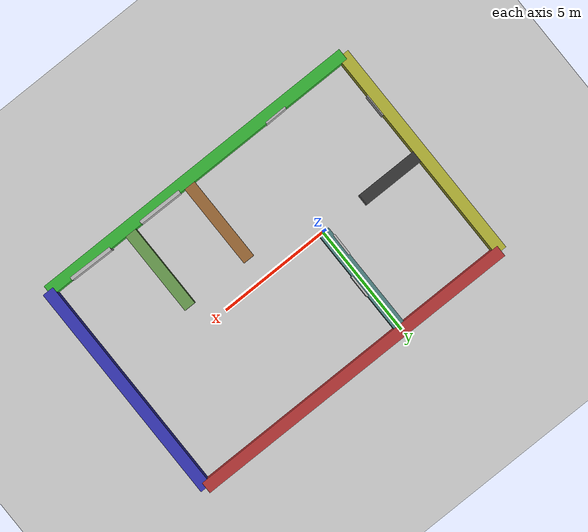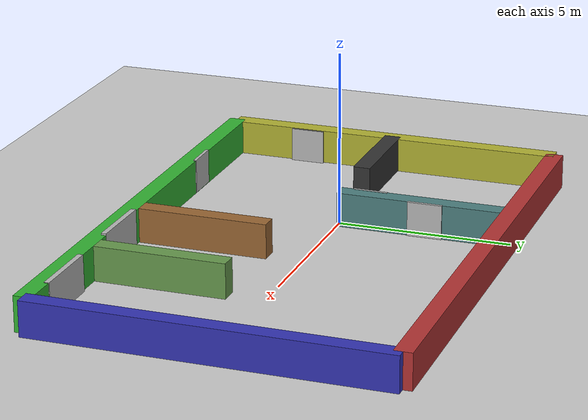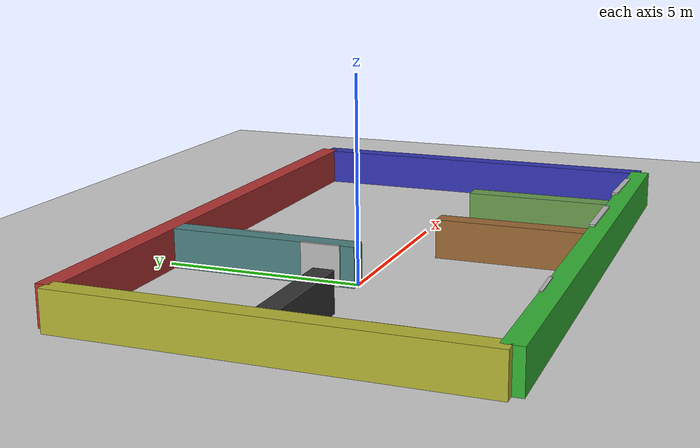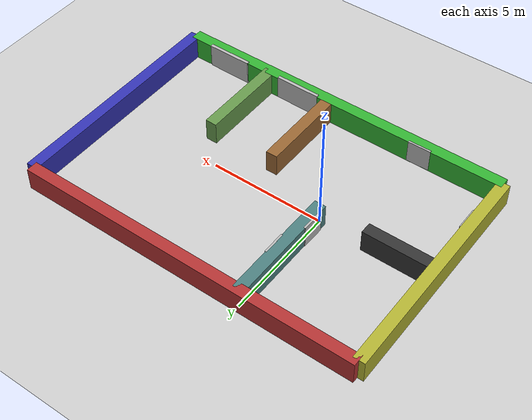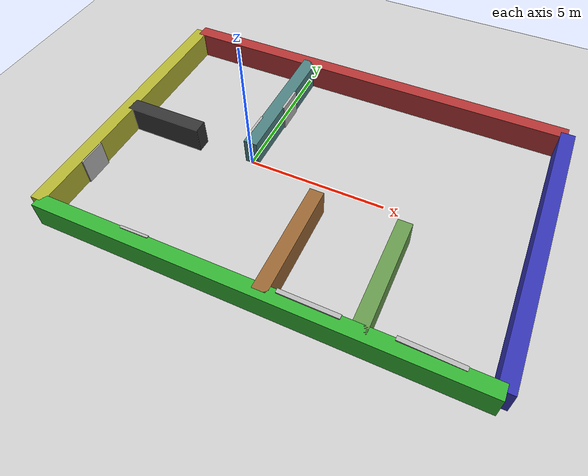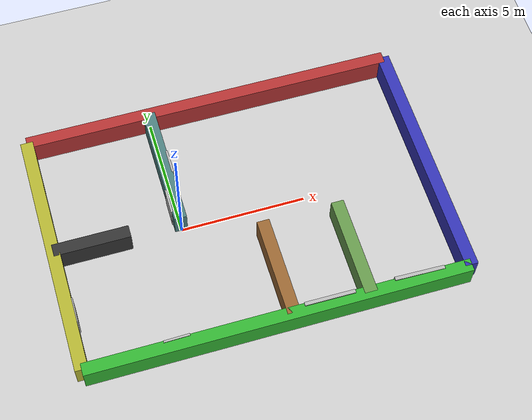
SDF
<?xml version="1.0" ?>
<sdf version='1.9'>
  <world name='cwmaze'>
    <scene>
      <grid>false</grid>
      <ambient>0.4 0.4 0.4 1</ambient>
      <background>0.7 0.7 0.7 1</background>
      <shadows>true</shadows>
    </scene>
    <physics name='10ms' type='ignored'>
      <max_step_size>0.01</max_step_size>
      <real_time_factor>1</real_time_factor>
      <dart>
        <collision_detector>bullet</collision_detector>
        <solver>
          <solver_type>dantzig</solver_type>
        </solver>
      </dart>
      <real_time_update_rate>1000</real_time_update_rate>
    </physics>
    <plugin name='ignition::gazebo::systems::Physics' filename='ignition-gazebo-physics-system'/>
    <plugin name='ignition::gazebo::systems::Sensors' filename='ignition-gazebo-sensors-system'>
      <render_engine>ogre2</render_engine>
    </plugin>
    <plugin name='ignition::gazebo::systems::SceneBroadcaster' filename='ignition-gazebo-scene-broadcaster-system'/>
    <plugin name='ignition::gazebo::systems::UserCommands' filename='ignition-gazebo-user-commands-system'/>
    <!-- imu plugin -->
    <plugin
      filename="libignition-gazebo-imu-system.so"
      name="ignition::gazebo::systems::Imu">
    </plugin>

    <gravity>0 0 -9.8</gravity>
    <magnetic_field>6e-06 2.3e-05 -4.2e-05</magnetic_field>
    <atmosphere type='adiabatic'/>
    <model name='ground_plane'>
      <static>true</static>
      <link name='link'>
        <collision name='collision'>
          <geometry>
            <plane>
              <normal>0 0 1</normal>
              <size>100 100</size>
            </plane>
          </geometry>
          <surface>
            <friction>
              <ode/>
            </friction>
            <bounce/>
            <contact/>
          </surface>
        </collision>
        <visual name='visual'>
          <geometry>
            <plane>
              <normal>0 0 1</normal>
              <size>100 100</size>
            </plane>
          </geometry>
          <material>
            <ambient>0.8 0.8 0.8 1</ambient>
            <diffuse>0.8 0.8 0.8 1</diffuse>
            <specular>0.8 0.8 0.8 1</specular>
          </material>
        </visual>
        <pose>0 0 0 0 -0 0</pose>
        <inertial>
          <pose>0 0 0 0 -0 0</pose>
          <mass>1</mass>
          <inertia>
            <ixx>1</ixx>
            <ixy>0</ixy>
            <ixz>0</ixz>
            <iyy>1</iyy>
            <iyz>0</iyz>
            <izz>1</izz>
          </inertia>
        </inertial>
        <enable_wind>false</enable_wind>
      </link>
      <pose>0 0 0 0 -0 0</pose>
      <self_collide>false</self_collide>
    </model>
    <model name='maze'>
      <static>true</static>
      <link name='wall_1'>
        <collision name='collision'>
          <geometry>
            <box>
              <size>15 0.5 1</size>
            </box>
          </geometry>
          <surface>
            <friction>
              <ode/>
            </friction>
            <bounce/>
            <contact/>
          </surface>
        </collision>
        <visual name='visual'>
          <geometry>
            <box>
              <size>15 0.5 1</size>
            </box>
          </geometry>
          <material>
            <ambient>0.7 0.2 0.2 1</ambient>
            <diffuse>0.7 0.2 0.2 1</diffuse>
          </material>
        </visual>
        <pose>2.5 5 0.5 0 -0 0</pose>
        <inertial>
          <pose>0 0 0 0 -0 0</pose>
          <mass>1</mass>
          <inertia>
            <ixx>1</ixx>
            <ixy>0</ixy>
            <ixz>0</ixz>
            <iyy>1</iyy>
            <iyz>0</iyz>
            <izz>1</izz>
          </inertia>
        </inertial>
        <enable_wind>false</enable_wind>
      </link>
      <link name='wall_2'>
        <collision name='collision'>
          <geometry>
            <box>
              <size>0.5 10 1</size>
            </box>
          </geometry>
          <surface>
            <friction>
              <ode/>
            </friction>
            <bounce/>
            <contact/>
          </surface>
        </collision>
        <visual name='visual'>
          <geometry>
            <box>
              <size>0.5 10 1</size>
            </box>
          </geometry>
          <material>
            <ambient>0.2 0.2 0.7 1</ambient>
            <diffuse>0.2 0.2 0.7 1</diffuse>
          </material>
        </visual>
        <pose>10 0 0.5 0 -0 0</pose>
        <inertial>
          <pose>0 0 0 0 -0 0</pose>
          <mass>1</mass>
          <inertia>
            <ixx>1</ixx>
            <ixy>0</ixy>
            <ixz>0</ixz>
            <iyy>1</iyy>
            <iyz>0</iyz>
            <izz>1</izz>
          </inertia>
        </inertial>
        <enable_wind>false</enable_wind>
      </link>
      <link name='wall_3'>
        <collision name='collision'>
          <geometry>
            <box>
              <size>15 0.5 1</size>
            </box>
          </geometry>
          <surface>
            <friction>
              <ode/>
            </friction>
            <bounce/>
            <contact/>
          </surface>
        </collision>
        <visual name='visual'>
          <geometry>
            <box>
              <size>15 0.5 1</size>
            </box>
          </geometry>
          <material>
            <ambient>0.2 0.7 0.2 1</ambient>
            <diffuse>0.2 0.7 0.2 1</diffuse>
          </material>
        </visual>
        <pose>2.5 -5 0.5 0 -0 0</pose>
        <inertial>
          <pose>0 0 0 0 -0 0</pose>
          <mass>1</mass>
          <inertia>
            <ixx>1</ixx>
            <ixy>0</ixy>
            <ixz>0</ixz>
            <iyy>1</iyy>
            <iyz>0</iyz>
            <izz>1</izz>
          </inertia>
        </inertial>
        <enable_wind>false</enable_wind>
      </link>
      <link name='wall_4'>
        <collision name='collision'>
          <geometry>
            <box>
              <size>0.5 10 1</size>
            </box>
          </geometry>
          <surface>
            <friction>
              <ode/>
            </friction>
            <bounce/>
            <contact/>
          </surface>
        </collision>
        <visual name='visual'>
          <geometry>
            <box>
              <size>0.5 10 1</size>
            </box>
          </geometry>
          <material>
            <ambient>0.7 0.7 0.2 1</ambient>
            <diffuse>0.7 0.7 0.2 1</diffuse>
          </material>
        </visual>
        <pose>-5 0 0.5 0 -0 0</pose>
        <inertial>
          <pose>0 0 0 0 -0 0</pose>
          <mass>1</mass>
          <inertia>
            <ixx>1</ixx>
            <ixy>0</ixy>
            <ixz>0</ixz>
            <iyy>1</iyy>
            <iyz>0</iyz>
            <izz>1</izz>
          </inertia>
        </inertial>
        <enable_wind>false</enable_wind>
      </link>
      <link name='wall_5'>
        <collision name='collision'>
          <geometry>
            <box>
              <size>0.5 5 1</size>
            </box>
          </geometry>
          <surface>
            <friction>
              <ode/>
            </friction>
            <bounce/>
            <contact/>
          </surface>
        </collision>
        <visual name='visual'>
          <geometry>
            <box>
              <size>0.5 5 1</size>
            </box>
          </geometry>
          <material>
            <ambient>0.3 0.5 0.5 1</ambient>
            <diffuse>0.3 0.5 0.5 1</diffuse>
          </material>
        </visual>
        <pose>0 2.5 0.5 0 -0 0</pose>
        <inertial>
          <pose>0 0 0 0 -0 0</pose>
          <mass>1</mass>
          <inertia>
            <ixx>1</ixx>
            <ixy>0</ixy>
            <ixz>0</ixz>
            <iyy>1</iyy>
            <iyz>0</iyz>
            <izz>1</izz>
          </inertia>
        </inertial>
        <enable_wind>false</enable_wind>
      </link>
      <link name='wall_6'>
        <collision name='collision'>
          <geometry>
            <box>
              <size>0.5 4 1</size>
            </box>
          </geometry>
          <surface>
            <friction>
              <ode/>
            </friction>
            <bounce/>
            <contact/>
          </surface>
        </collision>
        <visual name='visual'>
          <geometry>
            <box>
              <size>0.5 4 1</size>
            </box>
          </geometry>
          <material>
            <ambient>0.6 0.4 0.2 1</ambient>
            <diffuse>0.6 0.4 0.2 1</diffuse>
          </material>
        </visual>
        <pose>3 -3 0.5 0 -0 0</pose>
        <inertial>
          <pose>0 0 0 0 -0 0</pose>
          <mass>1</mass>
          <inertia>
            <ixx>1</ixx>
            <ixy>0</ixy>
            <ixz>0</ixz>
            <iyy>1</iyy>
            <iyz>0</iyz>
            <izz>1</izz>
          </inertia>
        </inertial>
        <enable_wind>false</enable_wind>
      </link>
      <link name='wall_7'>
        <collision name='collision'>
          <geometry>
            <box>
              <size>0.5 4 1</size>
            </box>
          </geometry>
          <surface>
            <friction>
              <ode/>
            </friction>
            <bounce/>
            <contact/>
          </surface>
        </collision>
        <visual name='visual'>
          <geometry>
            <box>
              <size>0.5 4 1</size>
            </box>
          </geometry>
          <material>
            <ambient>0.4 0.6 0.3 1</ambient>
            <diffuse>0.4 0.6 0.3 1</diffuse>
          </material>
        </visual>
        <pose>6 -3 0.5 0 -0 0</pose>
        <inertial>
          <pose>0 0 0 0 -0 0</pose>
          <mass>1</mass>
          <inertia>
            <ixx>1</ixx>
            <ixy>0</ixy>
            <ixz>0</ixz>
            <iyy>1</iyy>
            <iyz>0</iyz>
            <izz>1</izz>
          </inertia>
        </inertial>
        <enable_wind>false</enable_wind>
      </link>
      <link name='wall_8'>
        <collision name='collision'>
          <geometry>
            <box>
              <size>3 0.5 1</size>
            </box>
          </geometry>
          <surface>
            <friction>
              <ode/>
            </friction>
            <bounce/>
            <contact/>
          </surface>
        </collision>
        <visual name='visual'>
          <geometry>
            <box>
              <size>3 0.5 1</size>
            </box>
          </geometry>
          <material>
            <ambient>0.2 0.2 0.2 1</ambient>
            <diffuse>0.2 0.2 0.2 1</diffuse>
          </material>
        </visual>
        <pose>-3.5 0 0.5 0 -0 0</pose>
        <inertial>
          <pose>0 0 0 0 -0 0</pose>
          <mass>1</mass>
          <inertia>
            <ixx>1</ixx>
            <ixy>0</ixy>
            <ixz>0</ixz>
            <iyy>1</iyy>
            <iyz>0</iyz>
            <izz>1</izz>
          </inertia>
        </inertial>
        <enable_wind>false</enable_wind>
      </link>
      <pose>0 0 0 0 -0 0</pose>
      <self_collide>false</self_collide>
    </model>
    <model name='Slow Sign'>
      <static>true</static>
      <link name='link'>
        <collision name='collision'>
          <geometry>
            <mesh>
              <uri>file:///home/kalhan/Base_Experiment/robotsim_ws/install/ntu_hmrs_sim/share/ntu_hmrs_sim/worlds/cwmaze/model://slow_sign/meshes/slow_sign.dae</uri>
            </mesh>
          </geometry>
          <scale>0.5 0.5 0.5</scale>
        </collision>
        <visual name='visual'>
          <geometry>
            <mesh>
              <uri>file:///home/kalhan/Base_Experiment/robotsim_ws/install/ntu_hmrs_sim/share/ntu_hmrs_sim/worlds/cwmaze/model://slow_sign/meshes/slow_sign.dae</uri>
            </mesh>
          </geometry>
          <scale>0.5 0.5 0.5</scale>
        </visual>
        <pose>0 0 0 0 -0 0</pose>
        <inertial>
          <pose>0 0 0 0 -0 0</pose>
          <mass>1</mass>
          <inertia>
            <ixx>1</ixx>
            <ixy>0</ixy>
            <ixz>0</ixz>
            <iyy>1</iyy>
            <iyz>0</iyz>
            <izz>1</izz>
          </inertia>
        </inertial>
        <enable_wind>false</enable_wind>
      </link>
      <pose>-0.236212 0.847038 0.504795 0 -0 3.12892</pose>
      <self_collide>false</self_collide>
    </model>
    <model name='Fast Sign'>
      <static>true</static>
      <link name='link'>
        <collision name='collision'>
          <geometry>
            <mesh>
              <uri>file:///home/kalhan/Base_Experiment/robotsim_ws/install/ntu_hmrs_sim/share/ntu_hmrs_sim/worlds/cwmaze/model://fast_sign/meshes/fast_sign.dae</uri>
              <scale>0.5 0.5 0.5</scale>
            </mesh>
          </geometry>
        </collision>
        <visual name='visual'>
          <geometry>
            <mesh>
              <uri>file:///home/kalhan/Base_Experiment/robotsim_ws/install/ntu_hmrs_sim/share/ntu_hmrs_sim/worlds/cwmaze/model://fast_sign/meshes/fast_sign.dae</uri>
              <scale>0.5 0.5 0.5</scale>
            </mesh>
          </geometry>
        </visual>
        <pose>0 0 0 0 -0 0</pose>
        <inertial>
          <pose>0 0 0 0 -0 0</pose>
          <mass>1</mass>
          <inertia>
            <ixx>1</ixx>
            <ixy>0</ixy>
            <ixz>0</ixz>
            <iyy>1</iyy>
            <iyz>0</iyz>
            <izz>1</izz>
          </inertia>
        </inertial>
        <enable_wind>false</enable_wind>
      </link>
      <pose>-1.40546 -4.77867 0.524792 0 0 -1.55645</pose>
      <self_collide>false</self_collide>
    </model>
    <model name='Trees Picture'>
      <static>true</static>
      <link name='link'>
        <collision name='collision'>
          <geometry>
            <mesh>
              <uri>file:///home/kalhan/Base_Experiment/robotsim_ws/install/ntu_hmrs_sim/share/ntu_hmrs_sim/worlds/cwmaze/model://trees/meshes/trees.dae</uri>
              <scale>0.2 0.2 0.2</scale>
            </mesh>
          </geometry>
        </collision>
        <visual name='visual'>
          <geometry>
            <mesh>
              <uri>file:///home/kalhan/Base_Experiment/robotsim_ws/install/ntu_hmrs_sim/share/ntu_hmrs_sim/worlds/cwmaze/model://trees/meshes/trees.dae</uri>
              <scale>0.2 0.2 0.2</scale>
            </mesh>
          </geometry>
        </visual>
        <pose>0 0 0 0 -0 0</pose>
        <inertial>
          <pose>0 0 0 0 -0 0</pose>
          <mass>1</mass>
          <inertia>
            <ixx>1</ixx>
            <ixy>0</ixy>
            <ixz>0</ixz>
            <iyy>1</iyy>
            <iyz>0</iyz>
            <izz>1</izz>
          </inertia>
        </inertial>
        <enable_wind>false</enable_wind>
      </link>
      <pose>4.44671 -4.81541 0.523891 0 -0 1.56392</pose>
      <self_collide>false</self_collide>
    </model>
    <model name='Stop Sign'>
      <static>true</static>
      <link name='link'>
        <collision name='collision'>
          <geometry>
            <mesh>
              <uri>file:///home/kalhan/Base_Experiment/robotsim_ws/install/ntu_hmrs_sim/share/ntu_hmrs_sim/worlds/cwmaze/model://stop_sign/meshes/stop_sign.dae</uri>
              <scale>0.5 0.5 0.5</scale>
            </mesh>
          </geometry>
        </collision>
        <visual name='visual'>
          <geometry>
            <mesh>
              <uri>file:///home/kalhan/Base_Experiment/robotsim_ws/install/ntu_hmrs_sim/share/ntu_hmrs_sim/worlds/cwmaze/model://stop_sign/meshes/stop_sign.dae</uri>
              <scale>0.5 0.5 0.5</scale>
            </mesh>
          </geometry>
        </visual>
        <pose>0 0 0 0 -0 0</pose>
        <inertial>
          <pose>0 0 0 0 -0 0</pose>
          <mass>1</mass>
          <inertia>
            <ixx>1</ixx>
            <ixy>0</ixy>
            <ixz>0</ixz>
            <iyy>1</iyy>
            <iyz>0</iyz>
            <izz>1</izz>
          </inertia>
        </inertial>
        <enable_wind>false</enable_wind>
      </link>
      <pose>0.244756 2.58919 0.500387 0 -0 0</pose>
      <self_collide>false</self_collide>
    </model>
    <model name='Cars Picture'>
      <static>true</static>
      <link name='link'>
        <collision name='collision'>
          <geometry>
            <mesh>
              <uri>file:///home/kalhan/Base_Experiment/robotsim_ws/install/ntu_hmrs_sim/share/ntu_hmrs_sim/worlds/cwmaze/model://cars/meshes/cars.dae</uri>
              <scale>0.2 0.2 0.2</scale>
            </mesh>
          </geometry>
        </collision>
        <visual name='visual'>
          <geometry>
            <mesh>
              <uri>file:///home/kalhan/Base_Experiment/robotsim_ws/install/ntu_hmrs_sim/share/ntu_hmrs_sim/worlds/cwmaze/model://cars/meshes/cars.dae</uri>
              <scale>0.2 0.2 0.2</scale>
            </mesh>
          </geometry>
        </visual>
        <pose>0 0 0 0 -0 0</pose>
        <inertial>
          <pose>0 0 0 0 -0 0</pose>
          <mass>1</mass>
          <inertia>
            <ixx>1</ixx>
            <ixy>0</ixy>
            <ixz>0</ixz>
            <iyy>1</iyy>
            <iyz>0</iyz>
            <izz>1</izz>
          </inertia>
        </inertial>
        <enable_wind>false</enable_wind>
      </link>
      <pose>7.98231 -4.78763 0.50701 0.016494 0.000304 1.55237</pose>
      <self_collide>false</self_collide>
    </model>
    <model name='Oranges'>
      <static>true</static>
      <link name='link'>
        <collision name='collision'>
          <geometry>
            <mesh>
              <uri>file:///home/kalhan/Base_Experiment/robotsim_ws/install/ntu_hmrs_sim/share/ntu_hmrs_sim/models/oranges/model://oranges/meshes/oranges.dae</uri>
            </mesh>
          </geometry>
        </collision>
        <visual name='visual'>
          <geometry>
            <mesh>
              <uri>file:///home/kalhan/Base_Experiment/robotsim_ws/install/ntu_hmrs_sim/share/ntu_hmrs_sim/models/oranges/model://oranges/meshes/oranges.dae</uri>
            </mesh>
          </geometry>
        </visual>
        <pose>0 0 0 0 -0 0</pose>
        <inertial>
          <pose>0 0 0 0 -0 0</pose>
          <mass>1</mass>
          <inertia>
            <ixx>1</ixx>
            <ixy>0</ixy>
            <ixz>0</ixz>
            <iyy>1</iyy>
            <iyz>0</iyz>
            <izz>1</izz>
          </inertia>
        </inertial>
        <enable_wind>false</enable_wind>
      </link>
      <pose>-4.74652 -2.61838 0.483694 0 -0 0</pose>
      <self_collide>false</self_collide>
    </model>
    <light name='sun' type='directional'>
      <pose>0 0 10 0 -0 0</pose>
      <cast_shadows>true</cast_shadows>
      <intensity>1</intensity>
      <direction>-0.5 0.1 -0.9</direction>
      <diffuse>0.8 0.8 0.8 1</diffuse>
      <specular>0.2 0.2 0.2 1</specular>
      <attenuation>
        <range>1000</range>
        <linear>0.01</linear>
        <constant>0.90000000000000002</constant>
        <quadratic>0.001</quadratic>
      </attenuation>
      <spot>
        <inner_angle>0</inner_angle>
        <outer_angle>0</outer_angle>
        <falloff>0</falloff>
      </spot>
    </light>
  </world>
</sdf>
